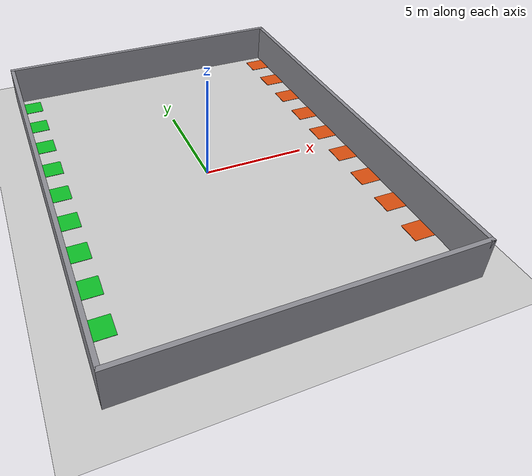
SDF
<?xml version="1.0" ?>
<sdf version="1.9">
  <world name="warehouse_fleet_world">
    <physics name="1ms" type="ignored">
      <max_step_size>0.001</max_step_size>
      <real_time_factor>1.0</real_time_factor>
    </physics>

    <plugin filename="gz-sim-physics-system" name="gz::sim::systems::Physics" />
    <plugin filename="gz-sim-user-commands-system" name="gz::sim::systems::UserCommands" />
    <plugin filename="gz-sim-scene-broadcaster-system" name="gz::sim::systems::SceneBroadcaster" />
    <plugin filename="gz-sim-contact-system" name="gz::sim::systems::Contact" />
    <plugin filename="gz-sim-sensors-system" name="gz::sim::systems::Sensors">
      <render_engine>ogre2</render_engine>
    </plugin>

    <light type="directional" name="sun">
      <cast_shadows>true</cast_shadows>
      <pose>0 0 10 0 0 0</pose>
      <diffuse>0.8 0.8 0.8 1</diffuse>
      <specular>0.2 0.2 0.2 1</specular>
      <attenuation>
        <range>1000</range>
        <constant>0.9</constant>
        <linear>0.01</linear>
        <quadratic>0.001</quadratic>
      </attenuation>
      <direction>-0.5 0.1 -0.9</direction>
    </light>

    <model name="ground_plane">
      <static>true</static>
      <link name="link">
        <collision name="collision">
          <geometry>
            <plane>
              <normal>0 0 1</normal>
              <size>15.0 20.0</size>
            </plane>
          </geometry>
          <surface>
            <friction>
              <ode>
                <mu>1.0</mu>
                <mu2>1.0</mu2>
              </ode>
            </friction>
          </surface>
        </collision>
        <visual name="visual">
          <geometry>
            <plane>
              <normal>0 0 1</normal>
              <size>15.0 20.0</size>
            </plane>
          </geometry>
          <material>
            <ambient>0.8 0.8 0.8 1</ambient>
            <diffuse>0.8 0.8 0.8 1</diffuse>
            <specular>0.8 0.8 0.8 1</specular>
          </material>
        </visual>
      </link>
    </model>

    <!-- perimeter walls: 0.2m thick, 2m tall boxes at x=+/-7.5, y=+/-10.0 -->
    <model name="warehouse_wall_north">
      <static>true</static>
      <pose>0 10.0 1 0 0 0</pose>
      <link name="link">
        <collision name="collision">
          <geometry><box><size>15.2 0.2 2.0</size></box></geometry>
        </collision>
        <visual name="visual">
          <geometry><box><size>15.2 0.2 2.0</size></box></geometry>
          <material>
            <ambient>0.55 0.55 0.58 1</ambient>
            <diffuse>0.55 0.55 0.58 1</diffuse>
          </material>
        </visual>
      </link>
    </model>

    <model name="warehouse_wall_south">
      <static>true</static>
      <pose>0 -10.0 1 0 0 0</pose>
      <link name="link">
        <collision name="collision">
          <geometry><box><size>15.2 0.2 2.0</size></box></geometry>
        </collision>
        <visual name="visual">
          <geometry><box><size>15.2 0.2 2.0</size></box></geometry>
          <material>
            <ambient>0.55 0.55 0.58 1</ambient>
            <diffuse>0.55 0.55 0.58 1</diffuse>
          </material>
        </visual>
      </link>
    </model>

    <!-- east wall behind output stations -->
    <model name="warehouse_wall_east">
      <static>true</static>
      <pose>7.5 0 1 0 0 1.5707963</pose>
      <link name="link">
        <collision name="collision">
          <geometry><box><size>20.2 0.2 2.0</size></box></geometry>
        </collision>
        <visual name="visual">
          <geometry><box><size>20.2 0.2 2.0</size></box></geometry>
          <material>
            <ambient>0.55 0.55 0.58 1</ambient>
            <diffuse>0.55 0.55 0.58 1</diffuse>
          </material>
        </visual>
      </link>
    </model>

    <!-- west wall behind input stations -->
    <model name="warehouse_wall_west">
      <static>true</static>
      <pose>-7.5 0 1 0 0 1.5707963</pose>
      <link name="link">
        <collision name="collision">
          <geometry><box><size>20.2 0.2 2.0</size></box></geometry>
        </collision>
        <visual name="visual">
          <geometry><box><size>20.2 0.2 2.0</size></box></geometry>
          <material>
            <ambient>0.55 0.55 0.58 1</ambient>
            <diffuse>0.55 0.55 0.58 1</diffuse>
          </material>
        </visual>
      </link>
    </model>

    <!-- input stations near west wall, x=-6.9, y=-9..9 step 2 -> 10 stations
         Names/coordinates must stay in sync with STATIONS in scripts/fleet_manager.py -->
    <model name="input_station_1">
      <static>true</static>
      <pose>-6.9 -9 0.01 0 0 0</pose>
      <link name="link">
        <visual name="visual">
          <geometry><box><size>1.0 1.0 0.02</size></box></geometry>
          <material>
            <ambient>0.05 0.75 0.15 1</ambient>
            <diffuse>0.05 0.75 0.15 1</diffuse>
          </material>
        </visual>
      </link>
    </model>
    <model name="input_station_2">
      <static>true</static>
      <pose>-6.9 -7 0.01 0 0 0</pose>
      <link name="link">
        <visual name="visual">
          <geometry><box><size>1.0 1.0 0.02</size></box></geometry>
          <material>
            <ambient>0.05 0.75 0.15 1</ambient>
            <diffuse>0.05 0.75 0.15 1</diffuse>
          </material>
        </visual>
      </link>
    </model>
    <model name="input_station_3">
      <static>true</static>
      <pose>-6.9 -5 0.01 0 0 0</pose>
      <link name="link">
        <visual name="visual">
          <geometry><box><size>1.0 1.0 0.02</size></box></geometry>
          <material>
            <ambient>0.05 0.75 0.15 1</ambient>
            <diffuse>0.05 0.75 0.15 1</diffuse>
          </material>
        </visual>
      </link>
    </model>
    <model name="input_station_4">
      <static>true</static>
      <pose>-6.9 -3 0.01 0 0 0</pose>
      <link name="link">
        <visual name="visual">
          <geometry><box><size>1.0 1.0 0.02</size></box></geometry>
          <material>
            <ambient>0.05 0.75 0.15 1</ambient>
            <diffuse>0.05 0.75 0.15 1</diffuse>
          </material>
        </visual>
      </link>
    </model>
    <model name="input_station_5">
      <static>true</static>
      <pose>-6.9 -1 0.01 0 0 0</pose>
      <link name="link">
        <visual name="visual">
          <geometry><box><size>1.0 1.0 0.02</size></box></geometry>
          <material>
            <ambient>0.05 0.75 0.15 1</ambient>
            <diffuse>0.05 0.75 0.15 1</diffuse>
          </material>
        </visual>
      </link>
    </model>
    <model name="input_station_6">
      <static>true</static>
      <pose>-6.9 1 0.01 0 0 0</pose>
      <link name="link">
        <visual name="visual">
          <geometry><box><size>1.0 1.0 0.02</size></box></geometry>
          <material>
            <ambient>0.05 0.75 0.15 1</ambient>
            <diffuse>0.05 0.75 0.15 1</diffuse>
          </material>
        </visual>
      </link>
    </model>
    <model name="input_station_7">
      <static>true</static>
      <pose>-6.9 3 0.01 0 0 0</pose>
      <link name="link">
        <visual name="visual">
          <geometry><box><size>1.0 1.0 0.02</size></box></geometry>
          <material>
            <ambient>0.05 0.75 0.15 1</ambient>
            <diffuse>0.05 0.75 0.15 1</diffuse>
          </material>
        </visual>
      </link>
    </model>
    <model name="input_station_8">
      <static>true</static>
      <pose>-6.9 5 0.01 0 0 0</pose>
      <link name="link">
        <visual name="visual">
          <geometry><box><size>1.0 1.0 0.02</size></box></geometry>
          <material>
            <ambient>0.05 0.75 0.15 1</ambient>
            <diffuse>0.05 0.75 0.15 1</diffuse>
          </material>
        </visual>
      </link>
    </model>
    <model name="input_station_9">
      <static>true</static>
      <pose>-6.9 7 0.01 0 0 0</pose>
      <link name="link">
        <visual name="visual">
          <geometry><box><size>1.0 1.0 0.02</size></box></geometry>
          <material>
            <ambient>0.05 0.75 0.15 1</ambient>
            <diffuse>0.05 0.75 0.15 1</diffuse>
          </material>
        </visual>
      </link>
    </model>
    <model name="input_station_10">
      <static>true</static>
      <pose>-6.9 9 0.01 0 0 0</pose>
      <link name="link">
        <visual name="visual">
          <geometry><box><size>1.0 1.0 0.02</size></box></geometry>
          <material>
            <ambient>0.05 0.75 0.15 1</ambient>
            <diffuse>0.05 0.75 0.15 1</diffuse>
          </material>
        </visual>
      </link>
    </model>

    <!-- output stations near east wall, x=6.9, same y spacing -->
    <model name="output_station_1">
      <static>true</static>
      <pose>6.9 -9 0.01 0 0 0</pose>
      <link name="link">
        <visual name="visual">
          <geometry><box><size>1.0 1.0 0.02</size></box></geometry>
          <material>
            <ambient>0.85 0.30 0.05 1</ambient>
            <diffuse>0.85 0.30 0.05 1</diffuse>
          </material>
        </visual>
      </link>
    </model>
    <model name="output_station_2">
      <static>true</static>
      <pose>6.9 -7 0.01 0 0 0</pose>
      <link name="link">
        <visual name="visual">
          <geometry><box><size>1.0 1.0 0.02</size></box></geometry>
          <material>
            <ambient>0.85 0.30 0.05 1</ambient>
            <diffuse>0.85 0.30 0.05 1</diffuse>
          </material>
        </visual>
      </link>
    </model>
    <model name="output_station_3">
      <static>true</static>
      <pose>6.9 -5 0.01 0 0 0</pose>
      <link name="link">
        <visual name="visual">
          <geometry><box><size>1.0 1.0 0.02</size></box></geometry>
          <material>
            <ambient>0.85 0.30 0.05 1</ambient>
            <diffuse>0.85 0.30 0.05 1</diffuse>
          </material>
        </visual>
      </link>
    </model>
    <model name="output_station_4">
      <static>true</static>
      <pose>6.9 -3 0.01 0 0 0</pose>
      <link name="link">
        <visual name="visual">
          <geometry><box><size>1.0 1.0 0.02</size></box></geometry>
          <material>
            <ambient>0.85 0.30 0.05 1</ambient>
            <diffuse>0.85 0.30 0.05 1</diffuse>
          </material>
        </visual>
      </link>
    </model>
    <model name="output_station_5">
      <static>true</static>
      <pose>6.9 -1 0.01 0 0 0</pose>
      <link name="link">
        <visual name="visual">
          <geometry><box><size>1.0 1.0 0.02</size></box></geometry>
          <material>
            <ambient>0.85 0.30 0.05 1</ambient>
            <diffuse>0.85 0.30 0.05 1</diffuse>
          </material>
        </visual>
      </link>
    </model>
    <model name="output_station_6">
      <static>true</static>
      <pose>6.9 1 0.01 0 0 0</pose>
      <link name="link">
        <visual name="visual">
          <geometry><box><size>1.0 1.0 0.02</size></box></geometry>
          <material>
            <ambient>0.85 0.30 0.05 1</ambient>
            <diffuse>0.85 0.30 0.05 1</diffuse>
          </material>
        </visual>
      </link>
    </model>
    <model name="output_station_7">
      <static>true</static>
      <pose>6.9 3 0.01 0 0 0</pose>
      <link name="link">
        <visual name="visual">
          <geometry><box><size>1.0 1.0 0.02</size></box></geometry>
          <material>
            <ambient>0.85 0.30 0.05 1</ambient>
            <diffuse>0.85 0.30 0.05 1</diffuse>
          </material>
        </visual>
      </link>
    </model>
    <model name="output_station_8">
      <static>true</static>
      <pose>6.9 5 0.01 0 0 0</pose>
      <link name="link">
        <visual name="visual">
          <geometry><box><size>1.0 1.0 0.02</size></box></geometry>
          <material>
            <ambient>0.85 0.30 0.05 1</ambient>
            <diffuse>0.85 0.30 0.05 1</diffuse>
          </material>
        </visual>
      </link>
    </model>
    <model name="output_station_9">
      <static>true</static>
      <pose>6.9 7 0.01 0 0 0</pose>
      <link name="link">
        <visual name="visual">
          <geometry><box><size>1.0 1.0 0.02</size></box></geometry>
          <material>
            <ambient>0.85 0.30 0.05 1</ambient>
            <diffuse>0.85 0.30 0.05 1</diffuse>
          </material>
        </visual>
      </link>
    </model>
    <model name="output_station_10">
      <static>true</static>
      <pose>6.9 9 0.01 0 0 0</pose>
      <link name="link">
        <visual name="visual">
          <geometry><box><size>1.0 1.0 0.02</size></box></geometry>
          <material>
            <ambient>0.85 0.30 0.05 1</ambient>
            <diffuse>0.85 0.30 0.05 1</diffuse>
          </material>
        </visual>
      </link>
    </model>
  </world>
</sdf>
